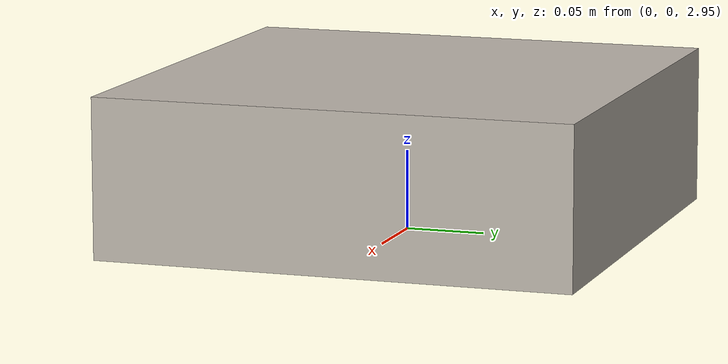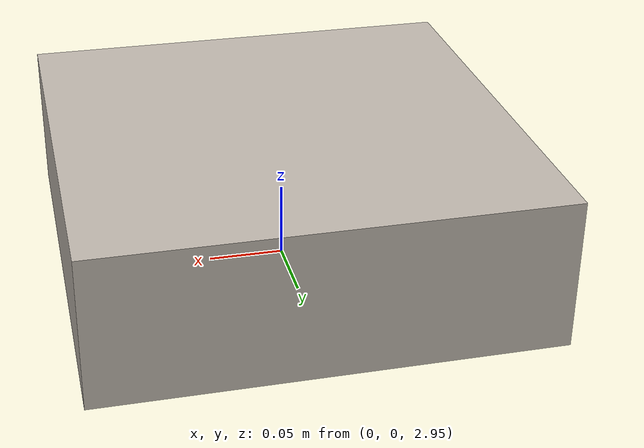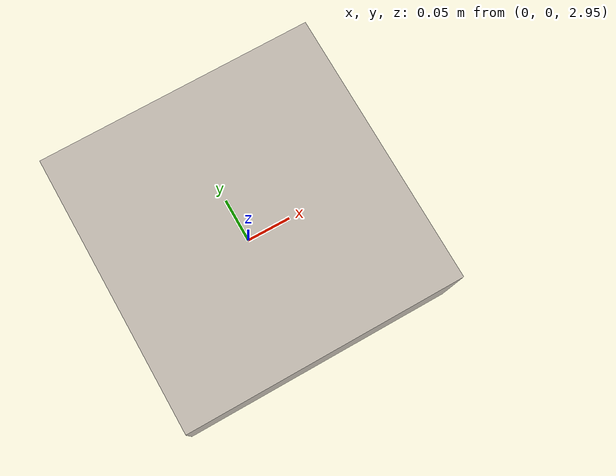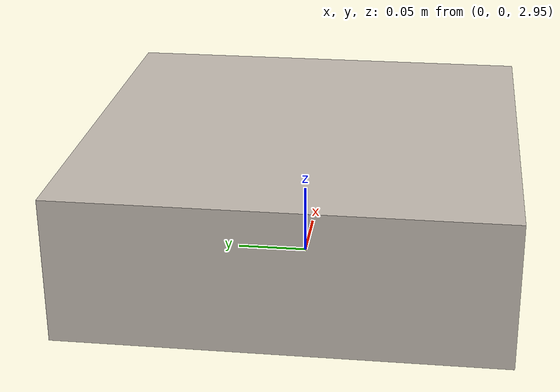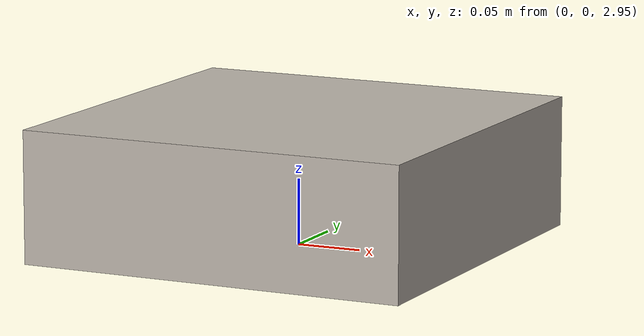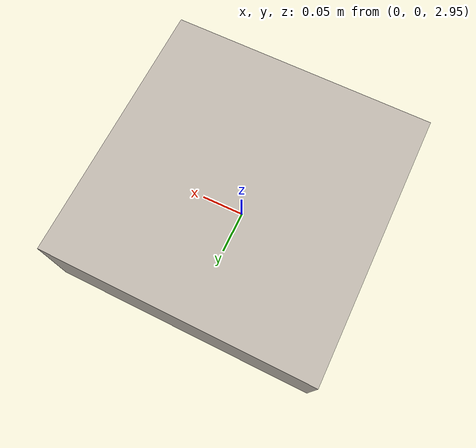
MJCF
<mujoco>

  <compiler angle="degree" meshdir="assets" texturedir="assets"/>
  <option timestep="0.01" iterations="4" />
  <statistic center="0 0 3" extent="2.5"/>

  <visual>
    <headlight diffuse="0.6 0.6 0.6" ambient="0.3 0.3 0.3" specular="0 0 0"/>
    <rgba haze="0.15 0.25 0.35 1"/>
    <global azimuth="120" elevation="-40"/>
  </visual>

  <asset>
    <texture type="2d" name="arrow" file="arrow.png"/>
    <material name="arrow" texture="arrow"/>
    <texture type="skybox" builtin="gradient" rgb1="0.3 0.5 0.7" rgb2="0 0 0" width="512" height="3072"/>
    <texture type="2d" name="groundplane" builtin="checker" mark="edge" rgb1="0.2 0.3 0.4" rgb2="0.1 0.2 0.3"
      markrgb="0.8 0.8 0.8" width="300" height="300"/>
    <material name="groundplane" texture="groundplane" texuniform="true" texrepeat="1 1" reflectance="0.2"/>
  </asset>

  <worldbody>

    <light pos="0 0 1.5" dir="0 0 -1" directional="true"/>
    <geom name="floor" size="0 0 0.05" pos="0 0 0" type="plane" material="groundplane"/>

    <body name="drone" pos="0 0 3">
      <freejoint name="drone_joint"/>
      <geom mass="0.450" type="box" size="0.15 0.15 0.05" material="arrow"/>
    </body>

  </worldbody>

</mujoco>
